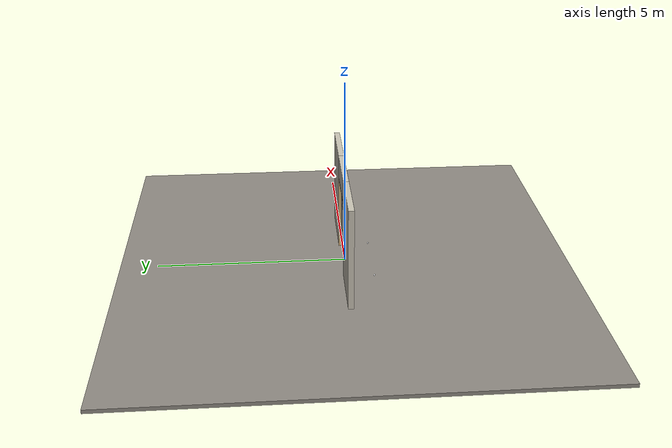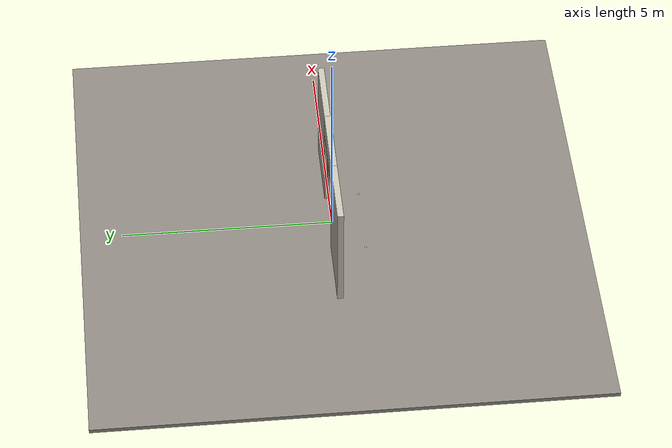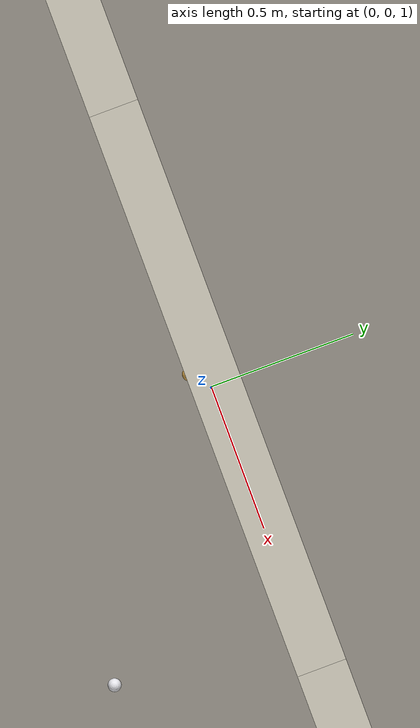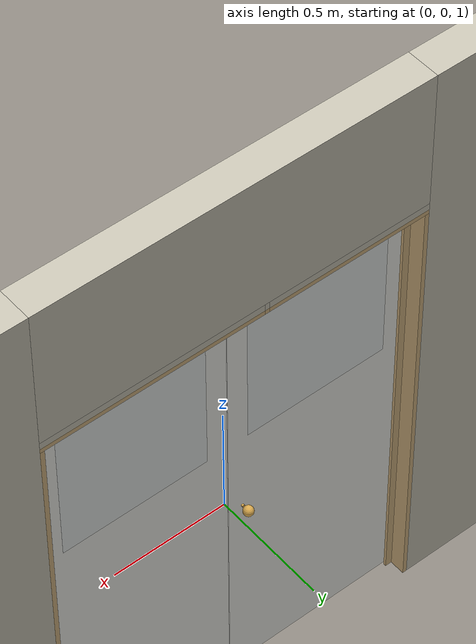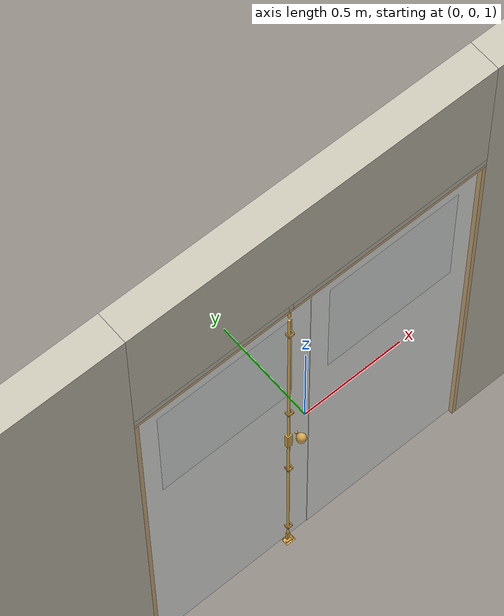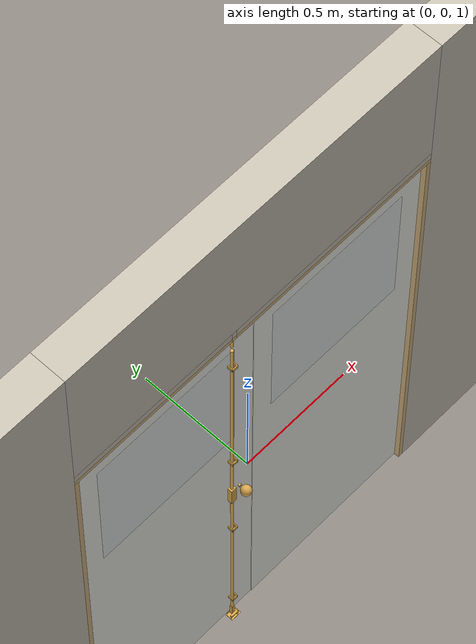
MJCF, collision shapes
<?xml version="1.0" ?>
<mujoco model="db0707_swing_double_full">
  <compiler angle="radian" meshdir="../../hardware" texturedir="../../textures" autolimits="true" inertiafromgeom="false"/>
  <option timestep="0.002" integrator="implicitfast" cone="elliptic" impratio="10" noslip_iterations="3">
    <flag multiccd="enable"/>
  </option>
  <size memory="16M"/>
  <default>
    <geom condim="4" solref="0.005 1" solimp="0.95 0.99 0.001"/>
    <joint solreflimit="0.005 1" solimplimit="0.95 0.99 0.001"/>
    <tendon solreflimit="0.005 1"/>
    <equality solref="0.002 1"/>
  </default>
  <visual>
    <headlight ambient="0.4 0.4 0.4" diffuse="0.7 0.7 0.7" specular="0.2 0.2 0.2"/>
    <quality shadowsize="4096"/>
    <map znear="0.01" zfar="60"/>
  </visual>
  <asset>
    <mesh name="hinge_e22b26c0c1" file="hinge_e22b26c0c1.obj"/>
    <mesh name="hinge_jamb_e1d088f8dc" file="hinge_jamb_e1d088f8dc.obj"/>
    <mesh name="knob_9525440cc3" file="knob_9525440cc3.obj"/>
    <material name="mat_floor" rgba="0.55 0.53 0.5 1" specular="0.2" shininess="0.15" reflectance="0"/>
    <material name="mat_wall" rgba="0.78 0.76 0.7 1" specular="0.2" shininess="0.1" reflectance="0"/>
    <material name="mat_leaf_a" rgba="0.93 0.93 0.91 1" specular="0.2" shininess="0.44" reflectance="0"/>
    <material name="mat_glass" rgba="0.85 0.92 0.95 0.25" specular="0.2" shininess="0.95" reflectance="0.1"/>
    <material name="mat_hinge" rgba="0.65 0.66 0.68 1" specular="0.74" shininess="0.5" reflectance="0.36"/>
    <material name="mat_op_brass" rgba="0.85 0.66 0.3 1" specular="0.8" shininess="0.75" reflectance="0.4"/>
    <material name="mat_trim" rgba="0.85 0.66 0.3 1" specular="0.8" shininess="0.75" reflectance="0.4"/>
    <material name="mat_stop" rgba="0.9 0.9 0.92 1" specular="0.8" shininess="0.9" reflectance="0.4"/>
    <material name="mat_leaf_b" rgba="0.93 0.93 0.91 1" specular="0.2" shininess="0.44" reflectance="0"/>
    <material name="mat_frame" rgba="0.82 0.7 0.5 1" specular="0.2" shininess="0.45" reflectance="0"/>
    <texture name="skybox" type="skybox" builtin="gradient" rgb1="0.6 0.7 0.85" rgb2="0.9 0.92 0.95" width="256" height="256"/>
  </asset>
  <worldbody>
    <light name="sun" pos="1.5 -2.5 4" dir="-0.3 0.5 -0.8" directional="true" diffuse="0.8 0.8 0.8" specular="0.3 0.3 0.3" castshadow="true"/>
    <light name="fill" pos="-1.5 2.5 3" dir="0.3 -0.5 -0.7" directional="true" diffuse="0.35 0.35 0.4" castshadow="false"/>
    <camera name="robot_view" pos="0 -2.511687 1.734312" xyaxes="1 0 0 0 0.26963 0.962964" fovy="52"/>
    <camera name="far_view" pos="0 2.572687 1.734312" xyaxes="-1 0 0 0 -0.26963 0.962964" fovy="52"/>
    <camera name="iso" pos="-1.932062 -2.104938 2.141063" xyaxes="0.741536 -0.670913 0 0.242917 0.268487 0.932151" fovy="46"/>
    <camera name="detail_handle" pos="0.1135 -0.857 1.245" xyaxes="0.97561 0.219512 0 -0.070934 0.315262 0.94635" fovy="38"/>
    <geom name="floor" type="box" size="6 6 0.05" pos="0 0 -0.05" material="mat_floor" group="0" contype="1" conaffinity="1" friction="0.8 0.005 0.0001" density="2400"/>
    <geom name="wall_left" type="box" size="0.83175 0.0725 1.35" pos="-1.66825 0.0305 1.35" material="mat_wall" group="0" contype="1" conaffinity="1" friction="0.6 0.005 0.0001" density="800"/>
    <geom name="wall_right" type="box" size="0.83175 0.0725 1.35" pos="1.66825 0.0305 1.35" material="mat_wall" group="0" contype="1" conaffinity="1" friction="0.6 0.005 0.0001" density="800"/>
    <geom name="wall_header" type="box" size="0.8365 0.0725 0.303" pos="0 0.0305 2.397" material="mat_wall" group="0" contype="1" conaffinity="1" friction="0.6 0.005 0.0001" density="800"/>
    <geom name="hinge_0_jamb" type="mesh" mesh="hinge_jamb_e1d088f8dc" pos="-0.8145 -0.029 0.266" material="mat_hinge" group="1" contype="0" conaffinity="0" density="7850"/>
    <geom name="hinge_1_jamb" type="mesh" mesh="hinge_jamb_e1d088f8dc" pos="-0.8145 -0.029 1.0285" material="mat_hinge" group="1" contype="0" conaffinity="0" density="7850"/>
    <geom name="hinge_2_jamb" type="mesh" mesh="hinge_jamb_e1d088f8dc" pos="-0.8145 -0.029 1.861" material="mat_hinge" group="1" contype="0" conaffinity="0" density="7850"/>
    <geom name="leaf_a_cremone_floor_strike_plate" type="box" size="0.023 0.023 0.00075" pos="-0.1115 -0.031 0.00075" material="mat_op_brass" group="0" contype="1" conaffinity="1" friction="0.6 0.005 0.0001" density="7850"/>
    <geom name="leaf_a_cremone_floor_strike_p" type="box" size="0.019 0.004 0.00575" pos="-0.1115 -0.019 0.00725" material="mat_op_brass" group="0" contype="1" conaffinity="1" friction="0.6 0.005 0.0001" density="7850"/>
    <geom name="leaf_a_cremone_floor_strike_n" type="box" size="0.019 0.004 0.00575" pos="-0.1115 -0.043 0.00725" material="mat_op_brass" group="0" contype="1" conaffinity="1" friction="0.6 0.005 0.0001" density="7850"/>
    <geom name="leaf_a_cremone_floor_strike_e" type="box" size="0.004 0.019 0.00575" pos="-0.0995 -0.031 0.00725" material="mat_op_brass" group="0" contype="1" conaffinity="1" friction="0.6 0.005 0.0001" density="7850"/>
    <geom name="floor_stop_dome" type="sphere" size="0.025" pos="-0.894653 -0.715677 0" material="mat_stop" group="0" contype="1" conaffinity="1" friction="0.6 0.005 0.0001" density="7000"/>
    <geom name="hinge_0_jamb_2" type="mesh" mesh="hinge_jamb_e1d088f8dc" pos="0.8145 -0.029 0.259" quat="0 0 1 0" material="mat_hinge" group="1" contype="0" conaffinity="0" density="7850"/>
    <geom name="hinge_1_jamb_2" type="mesh" mesh="hinge_jamb_e1d088f8dc" pos="0.8145 -0.029 1.025" quat="0 0 1 0" material="mat_hinge" group="1" contype="0" conaffinity="0" density="7850"/>
    <geom name="hinge_2_jamb_2" type="mesh" mesh="hinge_jamb_e1d088f8dc" pos="0.8145 -0.029 1.861" quat="0 0 1 0" material="mat_hinge" group="1" contype="0" conaffinity="0" density="7850"/>
    <geom name="floor_stop_dome_2" type="sphere" size="0.025" pos="0.894653 -0.715677 0" material="mat_stop" group="0" contype="1" conaffinity="1" friction="0.6 0.005 0.0001" density="7000"/>
    <geom name="jamb_l" type="box" size="0.0095 0.0725 1.0225" pos="-0.827 0.0305 1.0225" material="mat_frame" group="0" contype="1" conaffinity="1" friction="0.6 0.005 0.0001" density="300"/>
    <geom name="jamb_r" type="box" size="0.0095 0.0725 1.0225" pos="0.827 0.0305 1.0225" material="mat_frame" group="0" contype="1" conaffinity="1" friction="0.6 0.005 0.0001" density="300"/>
    <geom name="jamb_head_pwall_-111_n" type="box" size="0.01 0.00175 0.0095" pos="-0.1115 -0.04025 2.0545" material="mat_frame" group="0" contype="1" conaffinity="1" friction="0.6 0.005 0.0001" density="300"/>
    <geom name="jamb_head_pwall_-111_p" type="box" size="0.01 0.06325 0.0095" pos="-0.1115 0.03975 2.0545" material="mat_frame" group="0" contype="1" conaffinity="1" friction="0.6 0.005 0.0001" density="300"/>
    <geom name="jamb_head_0" type="box" size="0.3575 0.0725 0.0095" pos="-0.479 0.0305 2.0545" material="mat_frame" group="0" contype="1" conaffinity="1" friction="0.6 0.005 0.0001" density="300"/>
    <geom name="jamb_head_1" type="box" size="0.469 0.0725 0.0095" pos="0.3675 0.0305 2.0545" material="mat_frame" group="0" contype="1" conaffinity="1" friction="0.6 0.005 0.0001" density="300"/>
    <geom name="head_stud_pwall_-111_n" type="box" size="0.01 0.00175 0.015" pos="-0.1115 -0.04025 2.079" material="mat_wall" group="0" contype="1" conaffinity="1" friction="0.6 0.005 0.0001" density="500"/>
    <geom name="head_stud_pwall_-111_p" type="box" size="0.01 0.06325 0.015" pos="-0.1115 0.03975 2.079" material="mat_wall" group="0" contype="1" conaffinity="1" friction="0.6 0.005 0.0001" density="500"/>
    <geom name="head_stud_pback_-111" type="box" size="0.01 0.0075 0.0115" pos="-0.1115 -0.031 2.0825" material="mat_wall" group="0" contype="1" conaffinity="1" friction="0.6 0.005 0.0001" density="500"/>
    <geom name="head_stud_0" type="box" size="0.3575 0.0725 0.015" pos="-0.479 0.0305 2.079" material="mat_wall" group="0" contype="1" conaffinity="1" friction="0.6 0.005 0.0001" density="500"/>
    <geom name="head_stud_1" type="box" size="0.469 0.0725 0.015" pos="0.3675 0.0305 2.079" material="mat_wall" group="0" contype="1" conaffinity="1" friction="0.6 0.005 0.0001" density="500"/>
    <geom name="stop_l" type="box" size="0.015 0.006 1.0225" pos="-0.8025 0.0285 1.0225" material="mat_frame" group="0" contype="1" conaffinity="1" friction="0.6 0.005 0.0001" density="300"/>
    <geom name="stop_r" type="box" size="0.015 0.006 1.0225" pos="0.8025 0.0285 1.0225" material="mat_frame" group="0" contype="1" conaffinity="1" friction="0.6 0.005 0.0001" density="300"/>
    <geom name="stop_head" type="box" size="0.8175 0.006 0.015" pos="0 0.0285 2.03" material="mat_frame" group="0" contype="1" conaffinity="1" friction="0.6 0.005 0.0001" density="300"/>
    <site name="approach_point" pos="0 -1.5 0" quat="1 0 0 0" size="0.05" rgba="0.2 0.9 0.2 0.5" group="4"/>
    <site name="goal_point" pos="0 1.5 0" quat="1 0 0 0" size="0.05" rgba="0.2 0.9 0.2 0.5" group="4"/>
    <site name="door_plane_center" pos="0 0 1.0225" quat="1 0 0 0" size="0.02" rgba="0.2 0.9 0.2 0.5" group="4"/>
    <site name="approach_point_2" pos="0 -1.5 0" quat="1 0 0 0" size="0.05" rgba="0.2 0.9 0.2 0.5" group="4"/>
    <site name="goal_point_2" pos="0 1.5 0" quat="1 0 0 0" size="0.05" rgba="0.2 0.9 0.2 0.5" group="4"/>
    <site name="door_plane_center_2" pos="0 0 1.0225" quat="1 0 0 0" size="0.02" rgba="0.2 0.9 0.2 0.5" group="4"/>
    <site name="approach_point_3" pos="0 -1.5 0" quat="1 0 0 0" size="0.05" rgba="0.2 0.9 0.2 0.5" group="4"/>
    <site name="goal_point_3" pos="0 1.5 0" quat="1 0 0 0" size="0.05" rgba="0.2 0.9 0.2 0.5" group="4"/>
    <site name="door_plane_center_3" pos="0 0 1.0225" quat="1 0 0 0" size="0.02" rgba="0.2 0.9 0.2 0.5" group="4"/>
    <body name="leaf_a" pos="-0.8175 0 0">
      <inertial pos="0.416856 -0.001764 1.027749" mass="48.843401" quat="0.500854 0.498163 -0.501783 0.499192" diaginertia="2.859498859 16.615466674 19.455161116"/>
      <joint name="leaf_a_hinge" type="hinge" axis="0 0 -1" pos="0.003 -0.029 0" limited="true" range="0 1.658063" damping="0.210326" frictionloss="0.667839" armature="0.02"/>
      <geom name="leaf_a_slab" type="box" size="0.4065 0.022 1.0125" pos="0.4095 0 1.0285" material="mat_leaf_a" group="0" contype="1" conaffinity="1" friction="0.4 0.005 0.0001" density="1"/>
      <geom name="leaf_a_glass_0" type="box" size="0.3165 0.0228 0.297675" pos="0.4095 0 1.642075" material="mat_glass" group="1" contype="0" conaffinity="0" density="1"/>
      <geom name="hinge_0" type="mesh" mesh="hinge_e22b26c0c1" pos="0.003 -0.029 0.266" material="mat_hinge" group="1" contype="0" conaffinity="0" density="7850"/>
      <geom name="hinge_1" type="mesh" mesh="hinge_e22b26c0c1" pos="0.003 -0.029 1.0285" material="mat_hinge" group="1" contype="0" conaffinity="0" density="7850"/>
      <geom name="hinge_2" type="mesh" mesh="hinge_e22b26c0c1" pos="0.003 -0.029 1.861" material="mat_hinge" group="1" contype="0" conaffinity="0" density="7850"/>
      <geom name="leaf_a_cremone_rod_up" type="cylinder" size="0.006 0.4805" pos="0.706 -0.031 1.4855" material="mat_op_brass" group="1" contype="0" conaffinity="0" density="7850"/>
      <geom name="leaf_a_cremone_rod_down" type="cylinder" size="0.006 0.4395" pos="0.706 -0.031 0.4855" material="mat_op_brass" group="1" contype="0" conaffinity="0" density="7850"/>
      <geom name="leaf_a_cremone_gearbox" type="box" size="0.012 0.01 0.045" pos="0.706 -0.031 0.965" material="mat_op_brass" group="1" contype="0" conaffinity="0" density="7850"/>
      <geom name="leaf_a_cremone_guide_0_leg_n" type="box" size="0.007 0.002 0.0125" pos="0.717 -0.0345 1.215" quat="0.5 0.5 -0.5 0.5" material="mat_op_brass" group="1" contype="0" conaffinity="0" density="7800"/>
      <geom name="leaf_a_cremone_guide_0_leg_p" type="box" size="0.007 0.002 0.0125" pos="0.695 -0.0345 1.215" quat="0.5 0.5 -0.5 0.5" material="mat_op_brass" group="1" contype="0" conaffinity="0" density="7800"/>
      <geom name="leaf_a_cremone_guide_0_bridge" type="box" size="0.007 0.013 0.002" pos="0.706 -0.045 1.215" quat="0.5 0.5 -0.5 0.5" material="mat_op_brass" group="1" contype="0" conaffinity="0" density="7800"/>
      <geom name="leaf_a_cremone_guide_1_leg_n" type="box" size="0.007 0.002 0.0125" pos="0.717 -0.0345 1.866" quat="0.5 0.5 -0.5 0.5" material="mat_op_brass" group="1" contype="0" conaffinity="0" density="7800"/>
      <geom name="leaf_a_cremone_guide_1_leg_p" type="box" size="0.007 0.002 0.0125" pos="0.695 -0.0345 1.866" quat="0.5 0.5 -0.5 0.5" material="mat_op_brass" group="1" contype="0" conaffinity="0" density="7800"/>
      <geom name="leaf_a_cremone_guide_1_bridge" type="box" size="0.007 0.013 0.002" pos="0.706 -0.045 1.866" quat="0.5 0.5 -0.5 0.5" material="mat_op_brass" group="1" contype="0" conaffinity="0" density="7800"/>
      <geom name="leaf_a_cremone_guide_2_leg_n" type="box" size="0.007 0.002 0.0125" pos="0.717 -0.0345 0.715" quat="0.5 0.5 -0.5 0.5" material="mat_op_brass" group="1" contype="0" conaffinity="0" density="7800"/>
      <geom name="leaf_a_cremone_guide_2_leg_p" type="box" size="0.007 0.002 0.0125" pos="0.695 -0.0345 0.715" quat="0.5 0.5 -0.5 0.5" material="mat_op_brass" group="1" contype="0" conaffinity="0" density="7800"/>
      <geom name="leaf_a_cremone_guide_2_bridge" type="box" size="0.007 0.013 0.002" pos="0.706 -0.045 0.715" quat="0.5 0.5 -0.5 0.5" material="mat_op_brass" group="1" contype="0" conaffinity="0" density="7800"/>
      <geom name="leaf_a_cremone_guide_3_leg_n" type="box" size="0.007 0.002 0.0125" pos="0.717 -0.0345 0.146" quat="0.5 0.5 -0.5 0.5" material="mat_op_brass" group="1" contype="0" conaffinity="0" density="7800"/>
      <geom name="leaf_a_cremone_guide_3_leg_p" type="box" size="0.007 0.002 0.0125" pos="0.695 -0.0345 0.146" quat="0.5 0.5 -0.5 0.5" material="mat_op_brass" group="1" contype="0" conaffinity="0" density="7800"/>
      <geom name="leaf_a_cremone_guide_3_bridge" type="box" size="0.007 0.013 0.002" pos="0.706 -0.045 0.146" quat="0.5 0.5 -0.5 0.5" material="mat_op_brass" group="1" contype="0" conaffinity="0" density="7800"/>
      <site name="leaf_a_edge_mid" pos="0.816 0 1.0125" quat="1 0 0 0" size="0.02" rgba="0.2 0.9 0.2 0.5" group="4"/>
      <body name="leaf_a_handle" pos="0.751 0 0.965">
        <inertial pos="0 0 0" mass="0.732315" quat="0.5 0.5 0.5 0.5" diaginertia="0.000141246 0.002063101 0.002063101"/>
        <joint name="leaf_a_handle_hinge" type="hinge" axis="0 -1 0" limited="true" range="0 1.5708" damping="0.5" frictionloss="0.4" armature="0.01"/>
        <geom name="leaf_a_handle_spindle" type="cylinder" size="0.006 0.03" pos="0 0 0" quat="0.707107 -0.707107 0 0" material="mat_op_brass" group="1" contype="0" conaffinity="0" density="7850"/>
        <geom name="leaf_a_handle_cremone_knob_n" type="mesh" mesh="knob_9525440cc3" pos="0 -0.022 0" quat="0.707107 0.707107 0 0" material="mat_op_brass" group="1" contype="0" conaffinity="0" density="3000"/>
        <geom name="leaf_a_handle_cremone_col_n" type="sphere" size="0.022" pos="0 -0.057 0" material="mat_op_brass" group="0" contype="1" conaffinity="1" friction="0.6 0.005 0.0001" density="3000"/>
        <geom name="leaf_a_handle_cremone_knob_p" type="mesh" mesh="knob_9525440cc3" pos="0 0.022 0" quat="-0.707107 0.707107 0 0" material="mat_op_brass" group="1" contype="0" conaffinity="0" density="3000"/>
        <geom name="leaf_a_handle_cremone_col_p" type="sphere" size="0.022" pos="0 0.057 0" material="mat_op_brass" group="0" contype="1" conaffinity="1" friction="0.6 0.005 0.0001" density="3000"/>
        <site name="leaf_a_handle_grip_n" pos="0 -0.057 0" quat="1 0 0 0" size="0.012" rgba="0.2 0.9 0.2 0.5" group="4"/>
        <site name="leaf_a_handle_grip_p" pos="0 0.057 0" quat="1 0 0 0" size="0.012" rgba="0.2 0.9 0.2 0.5" group="4"/>
      </body>
      <body name="leaf_a_cremone_top_bolt" pos="0.706 -0.031 2.041">
        <inertial pos="0 0 -0.016" mass="0.060371" quat="0.707107 0 0.707107 0" diaginertia="0.000001061 0.000023913 0.000023913"/>
        <joint name="leaf_a_cremone_top_bolt_slide" type="slide" axis="0 0 -1" limited="true" range="0 0.02" damping="2" frictionloss="0.5" armature="0.1"/>
        <geom name="leaf_a_cremone_top_bolt_geom" type="capsule" size="0.006 0.03" pos="0 0 -0.016" material="mat_op_brass" group="0" contype="1" conaffinity="1" friction="0.4 0.005 0.0001" density="7850"/>
      </body>
      <body name="leaf_a_cremone_bottom_bolt" pos="0.706 -0.031 0.03">
        <inertial pos="0 0 0.004" mass="0.092316" quat="0.707107 0 0.707107 0" diaginertia="0.000003016 0.000029203 0.000029203"/>
        <joint name="leaf_a_cremone_bottom_bolt_slide" type="slide" axis="0 0 1" limited="true" range="0 0.026" damping="2" frictionloss="0.5" armature="0.1"/>
        <geom name="leaf_a_cremone_bottom_bolt_geom" type="box" size="0.007 0.007 0.03" pos="0 0 0.004" material="mat_op_brass" group="0" contype="1" conaffinity="1" friction="0.6 0.005 0.0001" density="7850"/>
      </body>
    </body>
    <body name="leaf_b" pos="0.8175 0 0">
      <inertial pos="-0.402624 -0.000303 1.025642" mass="48.865919" quat="0.500403 -0.499326 0.500663 0.499606" diaginertia="2.788375293 16.894048311 19.666032249"/>
      <joint name="leaf_b_hinge" type="hinge" axis="0 0 1" pos="-0.003 -0.029 0" limited="true" range="0 0.001" damping="0.210326" frictionloss="0.667839" armature="0.02"/>
      <geom name="leaf_b_slab" type="box" size="0.4065 0.022 1.016" pos="-0.4095 0 1.025" material="mat_leaf_b" group="0" contype="1" conaffinity="1" friction="0.4 0.005 0.0001" density="1"/>
      <geom name="leaf_b_glass_0" type="box" size="0.3165 0.0228 0.298704" pos="-0.4095 0 1.640696" material="mat_glass" group="1" contype="0" conaffinity="0" density="1"/>
      <geom name="hinge_0_2" type="mesh" mesh="hinge_e22b26c0c1" pos="-0.003 -0.029 0.259" quat="0 0 1 0" material="mat_hinge" group="1" contype="0" conaffinity="0" density="7850"/>
      <geom name="hinge_1_2" type="mesh" mesh="hinge_e22b26c0c1" pos="-0.003 -0.029 1.025" quat="0 0 1 0" material="mat_hinge" group="1" contype="0" conaffinity="0" density="7850"/>
      <geom name="hinge_2_2" type="mesh" mesh="hinge_e22b26c0c1" pos="-0.003 -0.029 1.861" quat="0 0 1 0" material="mat_hinge" group="1" contype="0" conaffinity="0" density="7850"/>
      <site name="leaf_b_edge_mid" pos="-0.816 0 1.016" quat="1 0 0 0" size="0.02" rgba="0.2 0.9 0.2 0.5" group="4"/>
    </body>
  </worldbody>
  <equality>
    <joint name="leaf_a_cremone_couple" joint1="leaf_a_cremone_top_bolt_slide" joint2="leaf_a_handle_hinge" polycoef="0 0.012732 0 0 0" active="true"/>
    <joint name="leaf_a_cremone_bottom_couple" joint1="leaf_a_cremone_bottom_bolt_slide" joint2="leaf_a_handle_hinge" polycoef="0 0.016552 0 0 0" active="true"/>
  </equality>
  <sensor>
    <jointpos name="leaf_a_hinge_pos" joint="leaf_a_hinge"/>
    <jointvel name="leaf_a_hinge_vel" joint="leaf_a_hinge"/>
    <jointpos name="leaf_a_handle_hinge_pos" joint="leaf_a_handle_hinge"/>
    <jointvel name="leaf_a_handle_hinge_vel" joint="leaf_a_handle_hinge"/>
    <jointpos name="leaf_a_cremone_top_bolt_slide_pos" joint="leaf_a_cremone_top_bolt_slide"/>
    <jointvel name="leaf_a_cremone_top_bolt_slide_vel" joint="leaf_a_cremone_top_bolt_slide"/>
    <jointpos name="leaf_a_cremone_bottom_bolt_slide_pos" joint="leaf_a_cremone_bottom_bolt_slide"/>
    <jointvel name="leaf_a_cremone_bottom_bolt_slide_vel" joint="leaf_a_cremone_bottom_bolt_slide"/>
    <jointpos name="leaf_b_hinge_pos" joint="leaf_b_hinge"/>
    <jointvel name="leaf_b_hinge_vel" joint="leaf_b_hinge"/>
  </sensor>
</mujoco>
